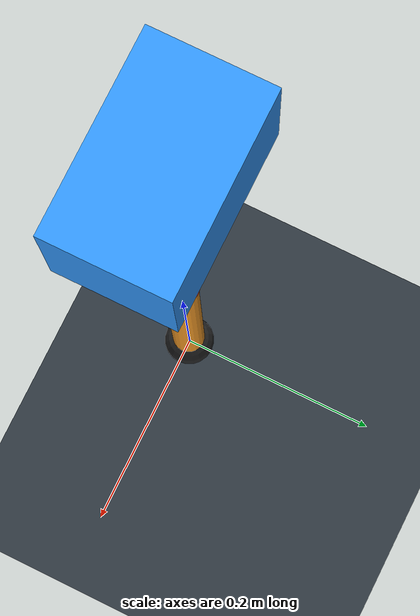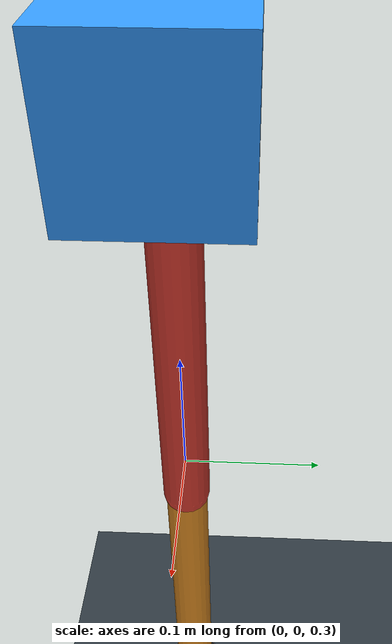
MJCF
<mujoco model="single_axis_two_bar">
  <compiler angle="radian" inertiafromgeom="true"/>
  <option timestep="0.001" integrator="implicitfast" gravity="0 0 -9.81"/>
  <default>
    <joint damping="0.08"/>
    <geom friction="1.2 0.01 0.0001" condim="3"/>
  </default>
  <worldbody>
    <geom name="floor" type="plane" size="5 5 0.1" rgba="0.18 0.22 0.25 1"/>
    <body name="carriage" pos="0 0 0.5931697721753323">
      <joint name="pole_slide" type="slide" axis="0 0 1"/>
      <geom name="payload" type="box" size="0.08 0.05 0.05" mass="2.9346273897443584" rgba="0.2 0.6 1 1"/>
      <body name="thigh" pos="0 0 0">
        <joint name="hip" type="hinge" axis="0 1 0"/>
        <geom name="thigh_link" type="capsule" fromto="0 0 0 0 0 -0.3258205290355349" size="0.018" mass="0.23215143227625684" rgba="0.9 0.25 0.2 1"/>
        <body name="shank" pos="0 0 -0.3258205290355349">
          <joint name="knee" type="hinge" axis="0 1 0"/>
          <geom name="shank_link" type="capsule" fromto="0 0 0 0 0 -0.2599215041349109" size="0.016" mass="0.18519750625577558" rgba="0.95 0.6 0.15 1"/>
          <geom name="foot" type="sphere" pos="0 0 -0.2599215041349109" size="0.025" mass="0.03" rgba="0.15 0.15 0.15 1"/>
          <site name="toe" pos="0 0 -0.2599215041349109" size="0.008"/>
        </body>
      </body>
    </body>
  </worldbody>
  <actuator>
    <motor name="hip_motor" joint="hip" ctrlrange="-45.0465822765826 45.0465822765826"/>
    <motor name="knee_motor" joint="knee" ctrlrange="-101.26445256197786 101.26445256197786"/>
  </actuator>
</mujoco>
